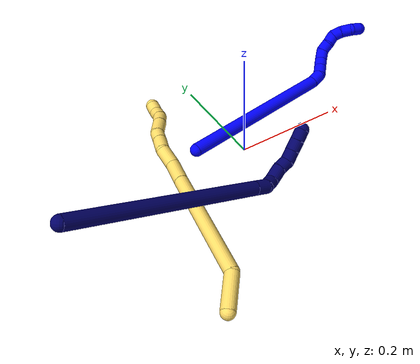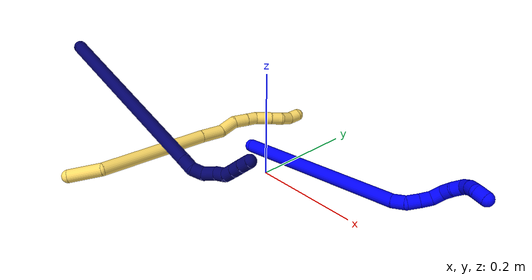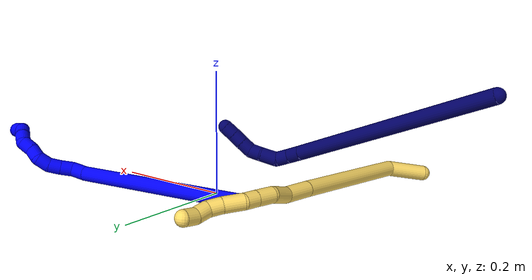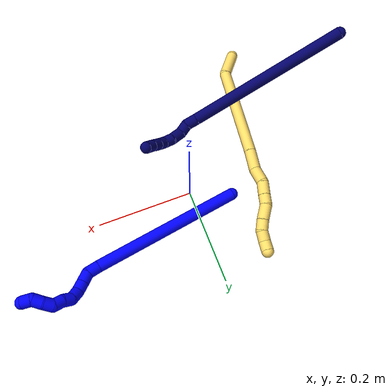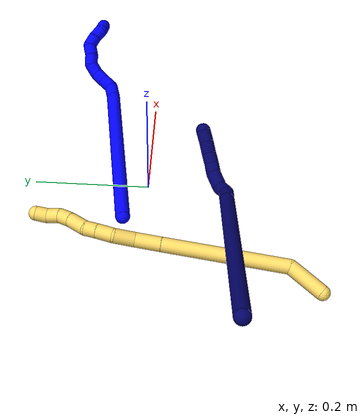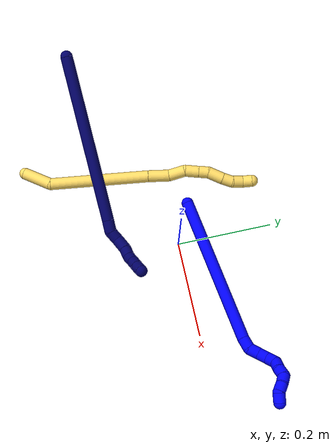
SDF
<sdf version="1.7">
 <world name="default">
  <model name="1">
   <static>0</static>
   <link name="1">
    <collision name="collision-cylinder-e_1_1_4">
     <pose>0.133681 0.030299 0.073276 -0.392083 1.03542 -0.22525</pose>
     <geometry><cylinder><radius>0.0125</radius><length>0.310857</length></cylinder></geometry>
     <surface>
      <friction><ode><mu>1.16</mu><mu2>1.16</mu2><slip1>0</slip1><slip2>0</slip2></ode></friction>
      <contact><ode><kp>1e+06</kp><kd>1</kd><max_vel>0</max_vel><min_depth>0.001</min_depth></ode></contact>
     </surface>
    </collision>
    <visual name="visual-cylinder-e_1_1_4">
     <pose>0.133681 0.030299 0.073276 -0.392083 1.03542 -0.22525</pose>
     <geometry><cylinder><radius>0.0125</radius><length>0.310857</length></cylinder></geometry>
     <material><ambient>0 0 1 1</ambient></material>
    </visual>
    <collision name="collision-cylinder-e_2_4_5">
     <pose>0.277868 0.060341 0.153365 0.037789 0.995255 0.020529</pose>
     <geometry><cylinder><radius>0.0125</radius><length>0.025048</length></cylinder></geometry>
     <surface>
      <friction><ode><mu>1.16</mu><mu2>1.16</mu2><slip1>0</slip1><slip2>0</slip2></ode></friction>
      <contact><ode><kp>1e+06</kp><kd>1</kd><max_vel>0</max_vel><min_depth>0.001</min_depth></ode></contact>
     </surface>
    </collision>
    <visual name="visual-cylinder-e_2_4_5">
     <pose>0.277868 0.060341 0.153365 0.037789 0.995255 0.020529</pose>
     <geometry><cylinder><radius>0.0125</radius><length>0.025048</length></cylinder></geometry>
     <material><ambient>0 0 1 1</ambient></material>
    </visual>
    <collision name="collision-cylinder-e_3_5_6">
     <pose>0.293063 0.058415 0.169955 0.16894 0.441566 0.038003</pose>
     <geometry><cylinder><radius>0.0125</radius><length>0.021945</length></cylinder></geometry>
     <surface>
      <friction><ode><mu>1.16</mu><mu2>1.16</mu2><slip1>0</slip1><slip2>0</slip2></ode></friction>
      <contact><ode><kp>1e+06</kp><kd>1</kd><max_vel>0</max_vel><min_depth>0.001</min_depth></ode></contact>
     </surface>
    </collision>
    <visual name="visual-cylinder-e_3_5_6">
     <pose>0.293063 0.058415 0.169955 0.16894 0.441566 0.038003</pose>
     <geometry><cylinder><radius>0.0125</radius><length>0.021945</length></cylinder></geometry>
     <material><ambient>0 0 1 1</ambient></material>
    </visual>
    <collision name="collision-cylinder-e_4_6_7">
     <pose>0.302303 0.054522 0.188616 0.245529 0.461185 0.057918</pose>
     <geometry><cylinder><radius>0.0125</radius><length>0.02045</length></cylinder></geometry>
     <surface>
      <friction><ode><mu>1.16</mu><mu2>1.16</mu2><slip1>0</slip1><slip2>0</slip2></ode></friction>
      <contact><ode><kp>1e+06</kp><kd>1</kd><max_vel>0</max_vel><min_depth>0.001</min_depth></ode></contact>
     </surface>
    </collision>
    <visual name="visual-cylinder-e_4_6_7">
     <pose>0.302303 0.054522 0.188616 0.245529 0.461185 0.057918</pose>
     <geometry><cylinder><radius>0.0125</radius><length>0.02045</length></cylinder></geometry>
     <material><ambient>0 0 1 1</ambient></material>
    </visual>
    <collision name="collision-cylinder-e_5_7_8">
     <pose>0.312536 0.046696 0.204785 0.65528 0.553842 0.192612</pose>
     <geometry><cylinder><radius>0.0125</radius><length>0.021611</length></cylinder></geometry>
     <surface>
      <friction><ode><mu>1.16</mu><mu2>1.16</mu2><slip1>0</slip1><slip2>0</slip2></ode></friction>
      <contact><ode><kp>1e+06</kp><kd>1</kd><max_vel>0</max_vel><min_depth>0.001</min_depth></ode></contact>
     </surface>
    </collision>
    <visual name="visual-cylinder-e_5_7_8">
     <pose>0.312536 0.046696 0.204785 0.65528 0.553842 0.192612</pose>
     <geometry><cylinder><radius>0.0125</radius><length>0.021611</length></cylinder></geometry>
     <material><ambient>0 0 1 1</ambient></material>
    </visual>
    <collision name="collision-cylinder-e_6_8_9">
     <pose>0.326784 0.036398 0.214335 1.12179 1.02393 0.678704</pose>
     <geometry><cylinder><radius>0.0125</radius><length>0.020054</length></cylinder></geometry>
     <surface>
      <friction><ode><mu>1.16</mu><mu2>1.16</mu2><slip1>0</slip1><slip2>0</slip2></ode></friction>
      <contact><ode><kp>1e+06</kp><kd>1</kd><max_vel>0</max_vel><min_depth>0.001</min_depth></ode></contact>
     </surface>
    </collision>
    <visual name="visual-cylinder-e_6_8_9">
     <pose>0.326784 0.036398 0.214335 1.12179 1.02393 0.678704</pose>
     <geometry><cylinder><radius>0.0125</radius><length>0.020054</length></cylinder></geometry>
     <material><ambient>0 0 1 1</ambient></material>
    </visual>
    <collision name="collision-cylinder-e_7_9_10">
     <pose>0.343446 0.028085 0.221222 0.663645 0.943552 0.348037</pose>
     <geometry><cylinder><radius>0.0125</radius><length>0.020001</length></cylinder></geometry>
     <surface>
      <friction><ode><mu>1.16</mu><mu2>1.16</mu2><slip1>0</slip1><slip2>0</slip2></ode></friction>
      <contact><ode><kp>1e+06</kp><kd>1</kd><max_vel>0</max_vel><min_depth>0.001</min_depth></ode></contact>
     </surface>
    </collision>
    <visual name="visual-cylinder-e_7_9_10">
     <pose>0.343446 0.028085 0.221222 0.663645 0.943552 0.348037</pose>
     <geometry><cylinder><radius>0.0125</radius><length>0.020001</length></cylinder></geometry>
     <material><ambient>0 0 1 1</ambient></material>
    </visual>
    <collision name="collision-cylinder-e_8_10_11">
     <pose>0.36108 0.022346 0.2237 2.36151 1.26425 2.1186</pose>
     <geometry><cylinder><radius>0.0125</radius><length>0.020007</length></cylinder></geometry>
     <surface>
      <friction><ode><mu>1.16</mu><mu2>1.16</mu2><slip1>0</slip1><slip2>0</slip2></ode></friction>
      <contact><ode><kp>1e+06</kp><kd>1</kd><max_vel>0</max_vel><min_depth>0.001</min_depth></ode></contact>
     </surface>
    </collision>
    <visual name="visual-cylinder-e_8_10_11">
     <pose>0.36108 0.022346 0.2237 2.36151 1.26425 2.1186</pose>
     <geometry><cylinder><radius>0.0125</radius><length>0.020007</length></cylinder></geometry>
     <material><ambient>0 0 1 1</ambient></material>
    </visual>
    <collision name="collision-cylinder-e_9_11_12">
     <pose>0.380197 0.02021 0.218651 3.13697 1.27651 3.13536</pose>
     <geometry><cylinder><radius>0.0125</radius><length>0.020021</length></cylinder></geometry>
     <surface>
      <friction><ode><mu>1.16</mu><mu2>1.16</mu2><slip1>0</slip1><slip2>0</slip2></ode></friction>
      <contact><ode><kp>1e+06</kp><kd>1</kd><max_vel>0</max_vel><min_depth>0.001</min_depth></ode></contact>
     </surface>
    </collision>
    <visual name="visual-cylinder-e_9_11_12">
     <pose>0.380197 0.02021 0.218651 3.13697 1.27651 3.13536</pose>
     <geometry><cylinder><radius>0.0125</radius><length>0.020021</length></cylinder></geometry>
     <material><ambient>0 0 1 1</ambient></material>
    </visual>
    <collision name="collision-cylinder-e_10_12_2">
     <pose>0.398678 0.024209 0.217922 -1.07426 1.09696 -0.697975</pose>
     <geometry><cylinder><radius>0.0125</radius><length>0.020006</length></cylinder></geometry>
     <surface>
      <friction><ode><mu>1.16</mu><mu2>1.16</mu2><slip1>0</slip1><slip2>0</slip2></ode></friction>
      <contact><ode><kp>1e+06</kp><kd>1</kd><max_vel>0</max_vel><min_depth>0.001</min_depth></ode></contact>
     </surface>
    </collision>
    <visual name="visual-cylinder-e_10_12_2">
     <pose>0.398678 0.024209 0.217922 -1.07426 1.09696 -0.697975</pose>
     <geometry><cylinder><radius>0.0125</radius><length>0.020006</length></cylinder></geometry>
     <material><ambient>0 0 1 1</ambient></material>
    </visual>
    <collision name="collision-sphere-2">
     <pose>0.407579 0.028223 0.220096 0 -0 0</pose>
     <geometry><sphere><radius>0.0125</radius></sphere></geometry>
     <surface>
      <friction><ode><mu>1.16</mu><mu2>1.16</mu2><slip1>0</slip1><slip2>0</slip2></ode></friction>
      <contact><ode><kp>1e+06</kp><kd>1</kd><max_vel>0</max_vel><min_depth>0.001</min_depth></ode></contact>
     </surface>
    </collision>
    <visual name="visual-sphere-2">
     <pose>0.407579 0.028223 0.220096 0 -0 0</pose>
     <geometry><sphere><radius>0.0125</radius></sphere></geometry>
     <material><ambient>0 0 1 1</ambient></material>
    </visual>
    <collision name="collision-sphere-12">
     <pose>0.389777 0.020196 0.215747 0 -0 0</pose>
     <geometry><sphere><radius>0.0125</radius></sphere></geometry>
     <surface>
      <friction><ode><mu>1.16</mu><mu2>1.16</mu2><slip1>0</slip1><slip2>0</slip2></ode></friction>
      <contact><ode><kp>1e+06</kp><kd>1</kd><max_vel>0</max_vel><min_depth>0.001</min_depth></ode></contact>
     </surface>
    </collision>
    <visual name="visual-sphere-12">
     <pose>0.389777 0.020196 0.215747 0 -0 0</pose>
     <geometry><sphere><radius>0.0125</radius></sphere></geometry>
     <material><ambient>0 0 1 1</ambient></material>
    </visual>
    <collision name="collision-sphere-11">
     <pose>0.370617 0.020223 0.221555 0 -0 0</pose>
     <geometry><sphere><radius>0.0125</radius></sphere></geometry>
     <surface>
      <friction><ode><mu>1.16</mu><mu2>1.16</mu2><slip1>0</slip1><slip2>0</slip2></ode></friction>
      <contact><ode><kp>1e+06</kp><kd>1</kd><max_vel>0</max_vel><min_depth>0.001</min_depth></ode></contact>
     </surface>
    </collision>
    <visual name="visual-sphere-11">
     <pose>0.370617 0.020223 0.221555 0 -0 0</pose>
     <geometry><sphere><radius>0.0125</radius></sphere></geometry>
     <material><ambient>0 0 1 1</ambient></material>
    </visual>
    <collision name="collision-sphere-10">
     <pose>0.351543 0.024469 0.225846 0 -0 0</pose>
     <geometry><sphere><radius>0.0125</radius></sphere></geometry>
     <surface>
      <friction><ode><mu>1.16</mu><mu2>1.16</mu2><slip1>0</slip1><slip2>0</slip2></ode></friction>
      <contact><ode><kp>1e+06</kp><kd>1</kd><max_vel>0</max_vel><min_depth>0.001</min_depth></ode></contact>
     </surface>
    </collision>
    <visual name="visual-sphere-10">
     <pose>0.351543 0.024469 0.225846 0 -0 0</pose>
     <geometry><sphere><radius>0.0125</radius></sphere></geometry>
     <material><ambient>0 0 1 1</ambient></material>
    </visual>
    <collision name="collision-sphere-9">
     <pose>0.335349 0.031701 0.216599 0 -0 0</pose>
     <geometry><sphere><radius>0.0125</radius></sphere></geometry>
     <surface>
      <friction><ode><mu>1.16</mu><mu2>1.16</mu2><slip1>0</slip1><slip2>0</slip2></ode></friction>
      <contact><ode><kp>1e+06</kp><kd>1</kd><max_vel>0</max_vel><min_depth>0.001</min_depth></ode></contact>
     </surface>
    </collision>
    <visual name="visual-sphere-9">
     <pose>0.335349 0.031701 0.216599 0 -0 0</pose>
     <geometry><sphere><radius>0.0125</radius></sphere></geometry>
     <material><ambient>0 0 1 1</ambient></material>
    </visual>
    <collision name="collision-sphere-4">
     <pose>0.267361 0.060598 0.146553 0 -0 0</pose>
     <geometry><sphere><radius>0.0125</radius></sphere></geometry>
     <surface>
      <friction><ode><mu>1.16</mu><mu2>1.16</mu2><slip1>0</slip1><slip2>0</slip2></ode></friction>
      <contact><ode><kp>1e+06</kp><kd>1</kd><max_vel>0</max_vel><min_depth>0.001</min_depth></ode></contact>
     </surface>
    </collision>
    <visual name="visual-sphere-4">
     <pose>0.267361 0.060598 0.146553 0 -0 0</pose>
     <geometry><sphere><radius>0.0125</radius></sphere></geometry>
     <material><ambient>0 0 1 1</ambient></material>
    </visual>
    <collision name="collision-sphere-1">
     <geometry><sphere><radius>0.0125</radius></sphere></geometry>
     <surface>
      <friction><ode><mu>1.16</mu><mu2>1.16</mu2><slip1>0</slip1><slip2>0</slip2></ode></friction>
      <contact><ode><kp>1e+06</kp><kd>1</kd><max_vel>0</max_vel><min_depth>0.001</min_depth></ode></contact>
     </surface>
    </collision>
    <visual name="visual-sphere-1">
     <geometry><sphere><radius>0.0125</radius></sphere></geometry>
     <material><ambient>0 0 1 1</ambient></material>
    </visual>
    <collision name="collision-sphere-8">
     <pose>0.31822 0.041095 0.212072 0 -0 0</pose>
     <geometry><sphere><radius>0.0125</radius></sphere></geometry>
     <surface>
      <friction><ode><mu>1.16</mu><mu2>1.16</mu2><slip1>0</slip1><slip2>0</slip2></ode></friction>
      <contact><ode><kp>1e+06</kp><kd>1</kd><max_vel>0</max_vel><min_depth>0.001</min_depth></ode></contact>
     </surface>
    </collision>
    <visual name="visual-sphere-8">
     <pose>0.31822 0.041095 0.212072 0 -0 0</pose>
     <geometry><sphere><radius>0.0125</radius></sphere></geometry>
     <material><ambient>0 0 1 1</ambient></material>
    </visual>
    <collision name="collision-sphere-5">
     <pose>0.288374 0.060083 0.160176 0 -0 0</pose>
     <geometry><sphere><radius>0.0125</radius></sphere></geometry>
     <surface>
      <friction><ode><mu>1.16</mu><mu2>1.16</mu2><slip1>0</slip1><slip2>0</slip2></ode></friction>
      <contact><ode><kp>1e+06</kp><kd>1</kd><max_vel>0</max_vel><min_depth>0.001</min_depth></ode></contact>
     </surface>
    </collision>
    <visual name="visual-sphere-5">
     <pose>0.288374 0.060083 0.160176 0 -0 0</pose>
     <geometry><sphere><radius>0.0125</radius></sphere></geometry>
     <material><ambient>0 0 1 1</ambient></material>
    </visual>
    <collision name="collision-sphere-6">
     <pose>0.297752 0.056747 0.179734 0 -0 0</pose>
     <geometry><sphere><radius>0.0125</radius></sphere></geometry>
     <surface>
      <friction><ode><mu>1.16</mu><mu2>1.16</mu2><slip1>0</slip1><slip2>0</slip2></ode></friction>
      <contact><ode><kp>1e+06</kp><kd>1</kd><max_vel>0</max_vel><min_depth>0.001</min_depth></ode></contact>
     </surface>
    </collision>
    <visual name="visual-sphere-6">
     <pose>0.297752 0.056747 0.179734 0 -0 0</pose>
     <geometry><sphere><radius>0.0125</radius></sphere></geometry>
     <material><ambient>0 0 1 1</ambient></material>
    </visual>
    <collision name="collision-sphere-7">
     <pose>0.306853 0.052296 0.197499 0 -0 0</pose>
     <geometry><sphere><radius>0.0125</radius></sphere></geometry>
     <surface>
      <friction><ode><mu>1.16</mu><mu2>1.16</mu2><slip1>0</slip1><slip2>0</slip2></ode></friction>
      <contact><ode><kp>1e+06</kp><kd>1</kd><max_vel>0</max_vel><min_depth>0.001</min_depth></ode></contact>
     </surface>
    </collision>
    <visual name="visual-sphere-7">
     <pose>0.306853 0.052296 0.197499 0 -0 0</pose>
     <geometry><sphere><radius>0.0125</radius></sphere></geometry>
     <material><ambient>0 0 1 1</ambient></material>
    </visual>
    <inertial>
     <pose>0.208236 0.033928 0.121137 0 -0 0</pose>
     <mass>0.5</mass>
     <inertia>
      <ixx>0.001004</ixx>
      <ixy>0</ixy>
      <ixz>0</ixz>
      <iyy>0.002181</iyy>
      <iyz>0</iyz>
      <izz>-0.002645</izz>
     </inertia>
    </inertial>
   </link>
   <pose>-0.081038 0.037521 0.011498 -1.65524 -0.265643 -0.317144</pose>
  </model>
  <model name="5">
   <static>0</static>
   <link name="5">
    <collision name="collision-cylinder-e_1_1_4">
     <pose>-0.009224 0.030371 -0.002419 -1.65028 -0.293984 0.317938</pose>
     <geometry><cylinder><radius>0.0125</radius><length>0.063666</length></cylinder></geometry>
     <surface>
      <friction><ode><mu>1.16</mu><mu2>1.16</mu2><slip1>0</slip1><slip2>0</slip2></ode></friction>
      <contact><ode><kp>1e+06</kp><kd>1</kd><max_vel>0</max_vel><min_depth>0.001</min_depth></ode></contact>
     </surface>
    </collision>
    <visual name="visual-cylinder-e_1_1_4">
     <pose>-0.009224 0.030371 -0.002419 -1.65028 -0.293984 0.317938</pose>
     <geometry><cylinder><radius>0.0125</radius><length>0.063666</length></cylinder></geometry>
     <material><ambient>1 0.858824 0.4 1</ambient></material>
    </visual>
    <collision name="collision-cylinder-e_2_4_5">
     <pose>0.003077 0.161572 0.010365 -1.42114 0.208043 -0.179193</pose>
     <geometry><cylinder><radius>0.0125</radius><length>0.208434</length></cylinder></geometry>
     <surface>
      <friction><ode><mu>1.16</mu><mu2>1.16</mu2><slip1>0</slip1><slip2>0</slip2></ode></friction>
      <contact><ode><kp>1e+06</kp><kd>1</kd><max_vel>0</max_vel><min_depth>0.001</min_depth></ode></contact>
     </surface>
    </collision>
    <visual name="visual-cylinder-e_2_4_5">
     <pose>0.003077 0.161572 0.010365 -1.42114 0.208043 -0.179193</pose>
     <geometry><cylinder><radius>0.0125</radius><length>0.208434</length></cylinder></geometry>
     <material><ambient>1 0.858824 0.4 1</ambient></material>
    </visual>
    <collision name="collision-cylinder-e_3_5_6">
     <pose>0.028361 0.2841 0.029601 -1.38706 0.168672 -0.140318</pose>
     <geometry><cylinder><radius>0.0125</radius><length>0.044773</length></cylinder></geometry>
     <surface>
      <friction><ode><mu>1.16</mu><mu2>1.16</mu2><slip1>0</slip1><slip2>0</slip2></ode></friction>
      <contact><ode><kp>1e+06</kp><kd>1</kd><max_vel>0</max_vel><min_depth>0.001</min_depth></ode></contact>
     </surface>
    </collision>
    <visual name="visual-cylinder-e_3_5_6">
     <pose>0.028361 0.2841 0.029601 -1.38706 0.168672 -0.140318</pose>
     <geometry><cylinder><radius>0.0125</radius><length>0.044773</length></cylinder></geometry>
     <material><ambient>1 0.858824 0.4 1</ambient></material>
    </visual>
    <collision name="collision-cylinder-e_4_6_7">
     <pose>0.038664 0.322332 0.03248 -1.64042 0.376058 -0.402495</pose>
     <geometry><cylinder><radius>0.0125</radius><length>0.035641</length></cylinder></geometry>
     <surface>
      <friction><ode><mu>1.16</mu><mu2>1.16</mu2><slip1>0</slip1><slip2>0</slip2></ode></friction>
      <contact><ode><kp>1e+06</kp><kd>1</kd><max_vel>0</max_vel><min_depth>0.001</min_depth></ode></contact>
     </surface>
    </collision>
    <visual name="visual-cylinder-e_4_6_7">
     <pose>0.038664 0.322332 0.03248 -1.64042 0.376058 -0.402495</pose>
     <geometry><cylinder><radius>0.0125</radius><length>0.035641</length></cylinder></geometry>
     <material><ambient>1 0.858824 0.4 1</ambient></material>
    </visual>
    <collision name="collision-cylinder-e_5_7_8">
     <pose>0.045852 0.352931 0.033948 -1.38655 0.04496 -0.037357</pose>
     <geometry><cylinder><radius>0.0125</radius><length>0.028641</length></cylinder></geometry>
     <surface>
      <friction><ode><mu>1.16</mu><mu2>1.16</mu2><slip1>0</slip1><slip2>0</slip2></ode></friction>
      <contact><ode><kp>1e+06</kp><kd>1</kd><max_vel>0</max_vel><min_depth>0.001</min_depth></ode></contact>
     </surface>
    </collision>
    <visual name="visual-cylinder-e_5_7_8">
     <pose>0.045852 0.352931 0.033948 -1.38655 0.04496 -0.037357</pose>
     <geometry><cylinder><radius>0.0125</radius><length>0.028641</length></cylinder></geometry>
     <material><ambient>1 0.858824 0.4 1</ambient></material>
    </visual>
    <collision name="collision-cylinder-e_6_8_9">
     <pose>0.047313 0.377189 0.038532 -1.3805 0.07851 -0.064841</pose>
     <geometry><cylinder><radius>0.0125</radius><length>0.020827</length></cylinder></geometry>
     <surface>
      <friction><ode><mu>1.16</mu><mu2>1.16</mu2><slip1>0</slip1><slip2>0</slip2></ode></friction>
      <contact><ode><kp>1e+06</kp><kd>1</kd><max_vel>0</max_vel><min_depth>0.001</min_depth></ode></contact>
     </surface>
    </collision>
    <visual name="visual-cylinder-e_6_8_9">
     <pose>0.047313 0.377189 0.038532 -1.3805 0.07851 -0.064841</pose>
     <geometry><cylinder><radius>0.0125</radius><length>0.020827</length></cylinder></geometry>
     <material><ambient>1 0.858824 0.4 1</ambient></material>
    </visual>
    <collision name="collision-cylinder-e_7_9_10">
     <pose>0.043706 0.402736 0.043734 -1.36295 -0.274773 0.223349</pose>
     <geometry><cylinder><radius>0.0125</radius><length>0.032605</length></cylinder></geometry>
     <surface>
      <friction><ode><mu>1.16</mu><mu2>1.16</mu2><slip1>0</slip1><slip2>0</slip2></ode></friction>
      <contact><ode><kp>1e+06</kp><kd>1</kd><max_vel>0</max_vel><min_depth>0.001</min_depth></ode></contact>
     </surface>
    </collision>
    <visual name="visual-cylinder-e_7_9_10">
     <pose>0.043706 0.402736 0.043734 -1.36295 -0.274773 0.223349</pose>
     <geometry><cylinder><radius>0.0125</radius><length>0.032605</length></cylinder></geometry>
     <material><ambient>1 0.858824 0.4 1</ambient></material>
    </visual>
    <collision name="collision-cylinder-e_8_10_11">
     <pose>0.037357 0.428592 0.049946 -1.29482 -0.174636 0.13219</pose>
     <geometry><cylinder><radius>0.0125</radius><length>0.022169</length></cylinder></geometry>
     <surface>
      <friction><ode><mu>1.16</mu><mu2>1.16</mu2><slip1>0</slip1><slip2>0</slip2></ode></friction>
      <contact><ode><kp>1e+06</kp><kd>1</kd><max_vel>0</max_vel><min_depth>0.001</min_depth></ode></contact>
     </surface>
    </collision>
    <visual name="visual-cylinder-e_8_10_11">
     <pose>0.037357 0.428592 0.049946 -1.29482 -0.174636 0.13219</pose>
     <geometry><cylinder><radius>0.0125</radius><length>0.022169</length></cylinder></geometry>
     <material><ambient>1 0.858824 0.4 1</ambient></material>
    </visual>
    <collision name="collision-cylinder-e_9_11_12">
     <pose>0.03738 0.449192 0.057327 -1.15927 0.175163 -0.114838</pose>
     <geometry><cylinder><radius>0.0125</radius><length>0.022376</length></cylinder></geometry>
     <surface>
      <friction><ode><mu>1.16</mu><mu2>1.16</mu2><slip1>0</slip1><slip2>0</slip2></ode></friction>
      <contact><ode><kp>1e+06</kp><kd>1</kd><max_vel>0</max_vel><min_depth>0.001</min_depth></ode></contact>
     </surface>
    </collision>
    <visual name="visual-cylinder-e_9_11_12">
     <pose>0.03738 0.449192 0.057327 -1.15927 0.175163 -0.114838</pose>
     <geometry><cylinder><radius>0.0125</radius><length>0.022376</length></cylinder></geometry>
     <material><ambient>1 0.858824 0.4 1</ambient></material>
    </visual>
    <collision name="collision-cylinder-e_10_12_2">
     <pose>0.041474 0.469459 0.062649 -1.48107 0.20697 -0.189297</pose>
     <geometry><cylinder><radius>0.0125</radius><length>0.020868</length></cylinder></geometry>
     <surface>
      <friction><ode><mu>1.16</mu><mu2>1.16</mu2><slip1>0</slip1><slip2>0</slip2></ode></friction>
      <contact><ode><kp>1e+06</kp><kd>1</kd><max_vel>0</max_vel><min_depth>0.001</min_depth></ode></contact>
     </surface>
    </collision>
    <visual name="visual-cylinder-e_10_12_2">
     <pose>0.041474 0.469459 0.062649 -1.48107 0.20697 -0.189297</pose>
     <geometry><cylinder><radius>0.0125</radius><length>0.020868</length></cylinder></geometry>
     <material><ambient>1 0.858824 0.4 1</ambient></material>
    </visual>
    <collision name="collision-sphere-2">
     <pose>0.043618 0.479629 0.063564 0 -0 0</pose>
     <geometry><sphere><radius>0.0125</radius></sphere></geometry>
     <surface>
      <friction><ode><mu>1.16</mu><mu2>1.16</mu2><slip1>0</slip1><slip2>0</slip2></ode></friction>
      <contact><ode><kp>1e+06</kp><kd>1</kd><max_vel>0</max_vel><min_depth>0.001</min_depth></ode></contact>
     </surface>
    </collision>
    <visual name="visual-sphere-2">
     <pose>0.043618 0.479629 0.063564 0 -0 0</pose>
     <geometry><sphere><radius>0.0125</radius></sphere></geometry>
     <material><ambient>1 0.858824 0.4 1</ambient></material>
    </visual>
    <collision name="collision-sphere-12">
     <pose>0.03933 0.459289 0.061734 0 -0 0</pose>
     <geometry><sphere><radius>0.0125</radius></sphere></geometry>
     <surface>
      <friction><ode><mu>1.16</mu><mu2>1.16</mu2><slip1>0</slip1><slip2>0</slip2></ode></friction>
      <contact><ode><kp>1e+06</kp><kd>1</kd><max_vel>0</max_vel><min_depth>0.001</min_depth></ode></contact>
     </surface>
    </collision>
    <visual name="visual-sphere-12">
     <pose>0.03933 0.459289 0.061734 0 -0 0</pose>
     <geometry><sphere><radius>0.0125</radius></sphere></geometry>
     <material><ambient>1 0.858824 0.4 1</ambient></material>
    </visual>
    <collision name="collision-sphere-11">
     <pose>0.035431 0.439095 0.05292 0 -0 0</pose>
     <geometry><sphere><radius>0.0125</radius></sphere></geometry>
     <surface>
      <friction><ode><mu>1.16</mu><mu2>1.16</mu2><slip1>0</slip1><slip2>0</slip2></ode></friction>
      <contact><ode><kp>1e+06</kp><kd>1</kd><max_vel>0</max_vel><min_depth>0.001</min_depth></ode></contact>
     </surface>
    </collision>
    <visual name="visual-sphere-11">
     <pose>0.035431 0.439095 0.05292 0 -0 0</pose>
     <geometry><sphere><radius>0.0125</radius></sphere></geometry>
     <material><ambient>1 0.858824 0.4 1</ambient></material>
    </visual>
    <collision name="collision-sphere-10">
     <pose>0.039283 0.41809 0.046972 0 -0 0</pose>
     <geometry><sphere><radius>0.0125</radius></sphere></geometry>
     <surface>
      <friction><ode><mu>1.16</mu><mu2>1.16</mu2><slip1>0</slip1><slip2>0</slip2></ode></friction>
      <contact><ode><kp>1e+06</kp><kd>1</kd><max_vel>0</max_vel><min_depth>0.001</min_depth></ode></contact>
     </surface>
    </collision>
    <visual name="visual-sphere-10">
     <pose>0.039283 0.41809 0.046972 0 -0 0</pose>
     <geometry><sphere><radius>0.0125</radius></sphere></geometry>
     <material><ambient>1 0.858824 0.4 1</ambient></material>
    </visual>
    <collision name="collision-sphere-9">
     <pose>0.048129 0.387383 0.040496 0 -0 0</pose>
     <geometry><sphere><radius>0.0125</radius></sphere></geometry>
     <surface>
      <friction><ode><mu>1.16</mu><mu2>1.16</mu2><slip1>0</slip1><slip2>0</slip2></ode></friction>
      <contact><ode><kp>1e+06</kp><kd>1</kd><max_vel>0</max_vel><min_depth>0.001</min_depth></ode></contact>
     </surface>
    </collision>
    <visual name="visual-sphere-9">
     <pose>0.048129 0.387383 0.040496 0 -0 0</pose>
     <geometry><sphere><radius>0.0125</radius></sphere></geometry>
     <material><ambient>1 0.858824 0.4 1</ambient></material>
    </visual>
    <collision name="collision-sphere-4">
     <pose>-0.018448 0.060742 -0.004838 0 -0 0</pose>
     <geometry><sphere><radius>0.0125</radius></sphere></geometry>
     <surface>
      <friction><ode><mu>1.16</mu><mu2>1.16</mu2><slip1>0</slip1><slip2>0</slip2></ode></friction>
      <contact><ode><kp>1e+06</kp><kd>1</kd><max_vel>0</max_vel><min_depth>0.001</min_depth></ode></contact>
     </surface>
    </collision>
    <visual name="visual-sphere-4">
     <pose>-0.018448 0.060742 -0.004838 0 -0 0</pose>
     <geometry><sphere><radius>0.0125</radius></sphere></geometry>
     <material><ambient>1 0.858824 0.4 1</ambient></material>
    </visual>
    <collision name="collision-sphere-1">
     <geometry><sphere><radius>0.0125</radius></sphere></geometry>
     <surface>
      <friction><ode><mu>1.16</mu><mu2>1.16</mu2><slip1>0</slip1><slip2>0</slip2></ode></friction>
      <contact><ode><kp>1e+06</kp><kd>1</kd><max_vel>0</max_vel><min_depth>0.001</min_depth></ode></contact>
     </surface>
    </collision>
    <visual name="visual-sphere-1">
     <geometry><sphere><radius>0.0125</radius></sphere></geometry>
     <material><ambient>1 0.858824 0.4 1</ambient></material>
    </visual>
    <collision name="collision-sphere-8">
     <pose>0.046496 0.366995 0.036569 0 -0 0</pose>
     <geometry><sphere><radius>0.0125</radius></sphere></geometry>
     <surface>
      <friction><ode><mu>1.16</mu><mu2>1.16</mu2><slip1>0</slip1><slip2>0</slip2></ode></friction>
      <contact><ode><kp>1e+06</kp><kd>1</kd><max_vel>0</max_vel><min_depth>0.001</min_depth></ode></contact>
     </surface>
    </collision>
    <visual name="visual-sphere-8">
     <pose>0.046496 0.366995 0.036569 0 -0 0</pose>
     <geometry><sphere><radius>0.0125</radius></sphere></geometry>
     <material><ambient>1 0.858824 0.4 1</ambient></material>
    </visual>
    <collision name="collision-sphere-5">
     <pose>0.024603 0.262402 0.025569 0 -0 0</pose>
     <geometry><sphere><radius>0.0125</radius></sphere></geometry>
     <surface>
      <friction><ode><mu>1.16</mu><mu2>1.16</mu2><slip1>0</slip1><slip2>0</slip2></ode></friction>
      <contact><ode><kp>1e+06</kp><kd>1</kd><max_vel>0</max_vel><min_depth>0.001</min_depth></ode></contact>
     </surface>
    </collision>
    <visual name="visual-sphere-5">
     <pose>0.024603 0.262402 0.025569 0 -0 0</pose>
     <geometry><sphere><radius>0.0125</radius></sphere></geometry>
     <material><ambient>1 0.858824 0.4 1</ambient></material>
    </visual>
    <collision name="collision-sphere-6">
     <pose>0.032119 0.305797 0.033633 0 -0 0</pose>
     <geometry><sphere><radius>0.0125</radius></sphere></geometry>
     <surface>
      <friction><ode><mu>1.16</mu><mu2>1.16</mu2><slip1>0</slip1><slip2>0</slip2></ode></friction>
      <contact><ode><kp>1e+06</kp><kd>1</kd><max_vel>0</max_vel><min_depth>0.001</min_depth></ode></contact>
     </surface>
    </collision>
    <visual name="visual-sphere-6">
     <pose>0.032119 0.305797 0.033633 0 -0 0</pose>
     <geometry><sphere><radius>0.0125</radius></sphere></geometry>
     <material><ambient>1 0.858824 0.4 1</ambient></material>
    </visual>
    <collision name="collision-sphere-7">
     <pose>0.045209 0.338868 0.031327 0 -0 0</pose>
     <geometry><sphere><radius>0.0125</radius></sphere></geometry>
     <surface>
      <friction><ode><mu>1.16</mu><mu2>1.16</mu2><slip1>0</slip1><slip2>0</slip2></ode></friction>
      <contact><ode><kp>1e+06</kp><kd>1</kd><max_vel>0</max_vel><min_depth>0.001</min_depth></ode></contact>
     </surface>
    </collision>
    <visual name="visual-sphere-7">
     <pose>0.045209 0.338868 0.031327 0 -0 0</pose>
     <geometry><sphere><radius>0.0125</radius></sphere></geometry>
     <material><ambient>1 0.858824 0.4 1</ambient></material>
    </visual>
    <inertial>
     <pose>0.017911 0.240527 0.022775 0 -0 0</pose>
     <mass>0.5</mass>
     <inertia>
      <ixx>0.000658</ixx>
      <ixy>0</ixy>
      <ixz>0</ixz>
      <iyy>5.5e-05</iyy>
      <iyz>0</iyz>
      <izz>-0.000936</izz>
     </inertia>
    </inertial>
   </link>
   <pose>-0.219648 -0.288496 0.012468 2.99013 -0.113111 2.79711</pose>
  </model>
  <model name="7">
   <static>0</static>
   <link name="7">
    <collision name="collision-cylinder-e_1_1_4">
     <pose>0.128276 -0.022929 0.112025 0.201886 0.842744 0.090736</pose>
     <geometry><cylinder><radius>0.0125</radius><length>0.343686</length></cylinder></geometry>
     <surface>
      <friction><ode><mu>1.16</mu><mu2>1.16</mu2><slip1>0</slip1><slip2>0</slip2></ode></friction>
      <contact><ode><kp>1e+06</kp><kd>1</kd><max_vel>0</max_vel><min_depth>0.001</min_depth></ode></contact>
     </surface>
    </collision>
    <visual name="visual-cylinder-e_1_1_4">
     <pose>0.128276 -0.022929 0.112025 0.201886 0.842744 0.090736</pose>
     <geometry><cylinder><radius>0.0125</radius><length>0.343686</length></cylinder></geometry>
     <material><ambient>0.003922 0 0.403922 1</ambient></material>
    </visual>
    <collision name="collision-cylinder-e_2_4_5">
     <pose>0.265918 -0.047582 0.232626 0.198424 0.819467 0.086408</pose>
     <geometry><cylinder><radius>0.0125</radius><length>0.025631</length></cylinder></geometry>
     <surface>
      <friction><ode><mu>1.16</mu><mu2>1.16</mu2><slip1>0</slip1><slip2>0</slip2></ode></friction>
      <contact><ode><kp>1e+06</kp><kd>1</kd><max_vel>0</max_vel><min_depth>0.001</min_depth></ode></contact>
     </surface>
    </collision>
    <visual name="visual-cylinder-e_2_4_5">
     <pose>0.265918 -0.047582 0.232626 0.198424 0.819467 0.086408</pose>
     <geometry><cylinder><radius>0.0125</radius><length>0.025631</length></cylinder></geometry>
     <material><ambient>0.003922 0 0.403922 1</ambient></material>
    </visual>
    <collision name="collision-cylinder-e_3_5_6">
     <pose>0.285885 -0.048551 0.244287 -0.240126 1.27975 -0.179121</pose>
     <geometry><cylinder><radius>0.0125</radius><length>0.022134</length></cylinder></geometry>
     <surface>
      <friction><ode><mu>1.16</mu><mu2>1.16</mu2><slip1>0</slip1><slip2>0</slip2></ode></friction>
      <contact><ode><kp>1e+06</kp><kd>1</kd><max_vel>0</max_vel><min_depth>0.001</min_depth></ode></contact>
     </surface>
    </collision>
    <visual name="visual-cylinder-e_3_5_6">
     <pose>0.285885 -0.048551 0.244287 -0.240126 1.27975 -0.179121</pose>
     <geometry><cylinder><radius>0.0125</radius><length>0.022134</length></cylinder></geometry>
     <material><ambient>0.003922 0 0.403922 1</ambient></material>
    </visual>
    <collision name="collision-cylinder-e_4_6_7">
     <pose>0.306414 -0.040133 0.253043 -0.933641 0.805679 -0.423103</pose>
     <geometry><cylinder><radius>0.0125</radius><length>0.027528</length></cylinder></geometry>
     <surface>
      <friction><ode><mu>1.16</mu><mu2>1.16</mu2><slip1>0</slip1><slip2>0</slip2></ode></friction>
      <contact><ode><kp>1e+06</kp><kd>1</kd><max_vel>0</max_vel><min_depth>0.001</min_depth></ode></contact>
     </surface>
    </collision>
    <visual name="visual-cylinder-e_4_6_7">
     <pose>0.306414 -0.040133 0.253043 -0.933641 0.805679 -0.423103</pose>
     <geometry><cylinder><radius>0.0125</radius><length>0.027528</length></cylinder></geometry>
     <material><ambient>0.003922 0 0.403922 1</ambient></material>
    </visual>
    <collision name="collision-cylinder-e_5_7_8">
     <pose>0.322895 -0.027973 0.264896 -0.629055 0.708667 -0.239555</pose>
     <geometry><cylinder><radius>0.0125</radius><length>0.020137</length></cylinder></geometry>
     <surface>
      <friction><ode><mu>1.16</mu><mu2>1.16</mu2><slip1>0</slip1><slip2>0</slip2></ode></friction>
      <contact><ode><kp>1e+06</kp><kd>1</kd><max_vel>0</max_vel><min_depth>0.001</min_depth></ode></contact>
     </surface>
    </collision>
    <visual name="visual-cylinder-e_5_7_8">
     <pose>0.322895 -0.027973 0.264896 -0.629055 0.708667 -0.239555</pose>
     <geometry><cylinder><radius>0.0125</radius><length>0.020137</length></cylinder></geometry>
     <material><ambient>0.003922 0 0.403922 1</ambient></material>
    </visual>
    <collision name="collision-cylinder-e_6_8_9">
     <pose>0.333557 -0.014726 0.274993 -1.14992 0.40503 -0.264549</pose>
     <geometry><cylinder><radius>0.0125</radius><length>0.02086</length></cylinder></geometry>
     <surface>
      <friction><ode><mu>1.16</mu><mu2>1.16</mu2><slip1>0</slip1><slip2>0</slip2></ode></friction>
      <contact><ode><kp>1e+06</kp><kd>1</kd><max_vel>0</max_vel><min_depth>0.001</min_depth></ode></contact>
     </surface>
    </collision>
    <visual name="visual-cylinder-e_6_8_9">
     <pose>0.333557 -0.014726 0.274993 -1.14992 0.40503 -0.264549</pose>
     <geometry><cylinder><radius>0.0125</radius><length>0.02086</length></cylinder></geometry>
     <material><ambient>0.003922 0 0.403922 1</ambient></material>
    </visual>
    <collision name="collision-cylinder-e_7_9_10">
     <pose>0.341259 0.002465 0.282893 -1.12988 0.367378 -0.234439</pose>
     <geometry><cylinder><radius>0.0125</radius><length>0.020001</length></cylinder></geometry>
     <surface>
      <friction><ode><mu>1.16</mu><mu2>1.16</mu2><slip1>0</slip1><slip2>0</slip2></ode></friction>
      <contact><ode><kp>1e+06</kp><kd>1</kd><max_vel>0</max_vel><min_depth>0.001</min_depth></ode></contact>
     </surface>
    </collision>
    <visual name="visual-cylinder-e_7_9_10">
     <pose>0.341259 0.002465 0.282893 -1.12988 0.367378 -0.234439</pose>
     <geometry><cylinder><radius>0.0125</radius><length>0.020001</length></cylinder></geometry>
     <material><ambient>0.003922 0 0.403922 1</ambient></material>
    </visual>
    <collision name="collision-cylinder-e_8_10_2">
     <pose>0.348827 0.019334 0.290532 -1.16149 0.408394 -0.270136</pose>
     <geometry><cylinder><radius>0.0125</radius><length>0.020023</length></cylinder></geometry>
     <surface>
      <friction><ode><mu>1.16</mu><mu2>1.16</mu2><slip1>0</slip1><slip2>0</slip2></ode></friction>
      <contact><ode><kp>1e+06</kp><kd>1</kd><max_vel>0</max_vel><min_depth>0.001</min_depth></ode></contact>
     </surface>
    </collision>
    <visual name="visual-cylinder-e_8_10_2">
     <pose>0.348827 0.019334 0.290532 -1.16149 0.408394 -0.270136</pose>
     <geometry><cylinder><radius>0.0125</radius><length>0.020023</length></cylinder></geometry>
     <material><ambient>0.003922 0 0.403922 1</ambient></material>
    </visual>
    <collision name="collision-sphere-2">
     <pose>0.352803 0.027764 0.294189 0 -0 0</pose>
     <geometry><sphere><radius>0.0125</radius></sphere></geometry>
     <surface>
      <friction><ode><mu>1.16</mu><mu2>1.16</mu2><slip1>0</slip1><slip2>0</slip2></ode></friction>
      <contact><ode><kp>1e+06</kp><kd>1</kd><max_vel>0</max_vel><min_depth>0.001</min_depth></ode></contact>
     </surface>
    </collision>
    <visual name="visual-sphere-2">
     <pose>0.352803 0.027764 0.294189 0 -0 0</pose>
     <geometry><sphere><radius>0.0125</radius></sphere></geometry>
     <material><ambient>0.003922 0 0.403922 1</ambient></material>
    </visual>
    <collision name="collision-sphere-10">
     <pose>0.344851 0.010905 0.286876 0 -0 0</pose>
     <geometry><sphere><radius>0.0125</radius></sphere></geometry>
     <surface>
      <friction><ode><mu>1.16</mu><mu2>1.16</mu2><slip1>0</slip1><slip2>0</slip2></ode></friction>
      <contact><ode><kp>1e+06</kp><kd>1</kd><max_vel>0</max_vel><min_depth>0.001</min_depth></ode></contact>
     </surface>
    </collision>
    <visual name="visual-sphere-10">
     <pose>0.344851 0.010905 0.286876 0 -0 0</pose>
     <geometry><sphere><radius>0.0125</radius></sphere></geometry>
     <material><ambient>0.003922 0 0.403922 1</ambient></material>
    </visual>
    <collision name="collision-sphere-9">
     <pose>0.337667 -0.005976 0.278909 0 -0 0</pose>
     <geometry><sphere><radius>0.0125</radius></sphere></geometry>
     <surface>
      <friction><ode><mu>1.16</mu><mu2>1.16</mu2><slip1>0</slip1><slip2>0</slip2></ode></friction>
      <contact><ode><kp>1e+06</kp><kd>1</kd><max_vel>0</max_vel><min_depth>0.001</min_depth></ode></contact>
     </surface>
    </collision>
    <visual name="visual-sphere-9">
     <pose>0.337667 -0.005976 0.278909 0 -0 0</pose>
     <geometry><sphere><radius>0.0125</radius></sphere></geometry>
     <material><ambient>0.003922 0 0.403922 1</ambient></material>
    </visual>
    <collision name="collision-sphere-4">
     <pose>0.256552 -0.045857 0.22405 0 -0 0</pose>
     <geometry><sphere><radius>0.0125</radius></sphere></geometry>
     <surface>
      <friction><ode><mu>1.16</mu><mu2>1.16</mu2><slip1>0</slip1><slip2>0</slip2></ode></friction>
      <contact><ode><kp>1e+06</kp><kd>1</kd><max_vel>0</max_vel><min_depth>0.001</min_depth></ode></contact>
     </surface>
    </collision>
    <visual name="visual-sphere-4">
     <pose>0.256552 -0.045857 0.22405 0 -0 0</pose>
     <geometry><sphere><radius>0.0125</radius></sphere></geometry>
     <material><ambient>0.003922 0 0.403922 1</ambient></material>
    </visual>
    <collision name="collision-sphere-1">
     <geometry><sphere><radius>0.0125</radius></sphere></geometry>
     <surface>
      <friction><ode><mu>1.16</mu><mu2>1.16</mu2><slip1>0</slip1><slip2>0</slip2></ode></friction>
      <contact><ode><kp>1e+06</kp><kd>1</kd><max_vel>0</max_vel><min_depth>0.001</min_depth></ode></contact>
     </surface>
    </collision>
    <visual name="visual-sphere-1">
     <geometry><sphere><radius>0.0125</radius></sphere></geometry>
     <material><ambient>0.003922 0 0.403922 1</ambient></material>
    </visual>
    <collision name="collision-sphere-8">
     <pose>0.329448 -0.023475 0.271077 0 -0 0</pose>
     <geometry><sphere><radius>0.0125</radius></sphere></geometry>
     <surface>
      <friction><ode><mu>1.16</mu><mu2>1.16</mu2><slip1>0</slip1><slip2>0</slip2></ode></friction>
      <contact><ode><kp>1e+06</kp><kd>1</kd><max_vel>0</max_vel><min_depth>0.001</min_depth></ode></contact>
     </surface>
    </collision>
    <visual name="visual-sphere-8">
     <pose>0.329448 -0.023475 0.271077 0 -0 0</pose>
     <geometry><sphere><radius>0.0125</radius></sphere></geometry>
     <material><ambient>0.003922 0 0.403922 1</ambient></material>
    </visual>
    <collision name="collision-sphere-5">
     <pose>0.275283 -0.049306 0.241203 0 -0 0</pose>
     <geometry><sphere><radius>0.0125</radius></sphere></geometry>
     <surface>
      <friction><ode><mu>1.16</mu><mu2>1.16</mu2><slip1>0</slip1><slip2>0</slip2></ode></friction>
      <contact><ode><kp>1e+06</kp><kd>1</kd><max_vel>0</max_vel><min_depth>0.001</min_depth></ode></contact>
     </surface>
    </collision>
    <visual name="visual-sphere-5">
     <pose>0.275283 -0.049306 0.241203 0 -0 0</pose>
     <geometry><sphere><radius>0.0125</radius></sphere></geometry>
     <material><ambient>0.003922 0 0.403922 1</ambient></material>
    </visual>
    <collision name="collision-sphere-6">
     <pose>0.296486 -0.047796 0.247372 0 -0 0</pose>
     <geometry><sphere><radius>0.0125</radius></sphere></geometry>
     <surface>
      <friction><ode><mu>1.16</mu><mu2>1.16</mu2><slip1>0</slip1><slip2>0</slip2></ode></friction>
      <contact><ode><kp>1e+06</kp><kd>1</kd><max_vel>0</max_vel><min_depth>0.001</min_depth></ode></contact>
     </surface>
    </collision>
    <visual name="visual-sphere-6">
     <pose>0.296486 -0.047796 0.247372 0 -0 0</pose>
     <geometry><sphere><radius>0.0125</radius></sphere></geometry>
     <material><ambient>0.003922 0 0.403922 1</ambient></material>
    </visual>
    <collision name="collision-sphere-7">
     <pose>0.316342 -0.03247 0.258715 0 -0 0</pose>
     <geometry><sphere><radius>0.0125</radius></sphere></geometry>
     <surface>
      <friction><ode><mu>1.16</mu><mu2>1.16</mu2><slip1>0</slip1><slip2>0</slip2></ode></friction>
      <contact><ode><kp>1e+06</kp><kd>1</kd><max_vel>0</max_vel><min_depth>0.001</min_depth></ode></contact>
     </surface>
    </collision>
    <visual name="visual-sphere-7">
     <pose>0.316342 -0.03247 0.258715 0 -0 0</pose>
     <geometry><sphere><radius>0.0125</radius></sphere></geometry>
     <material><ambient>0.003922 0 0.403922 1</ambient></material>
    </visual>
    <inertial>
     <pose>0.185871 -0.023427 0.158765 0 -0 0</pose>
     <mass>0.5</mass>
     <inertia>
      <ixx>0.00249</ixx>
      <ixy>0</ixy>
      <ixz>0</ixz>
      <iyy>0.003575</iyy>
      <iyz>0</iyz>
      <izz>-0.002073</izz>
     </inertia>
    </inertial>
   </link>
   <pose>-0.387522 -0.150917 0.182969 1.51492 0.395636 0.836208</pose>
  </model>
 </world>
</sdf>
